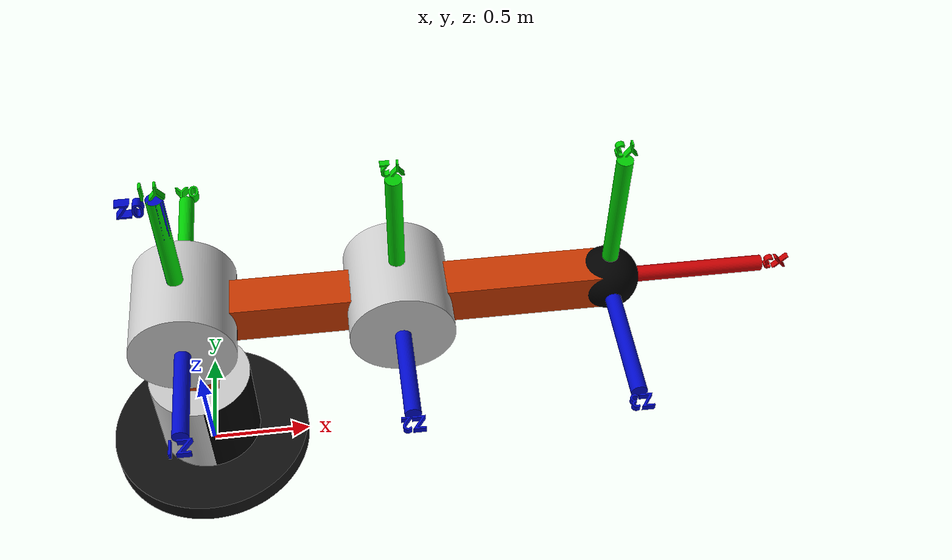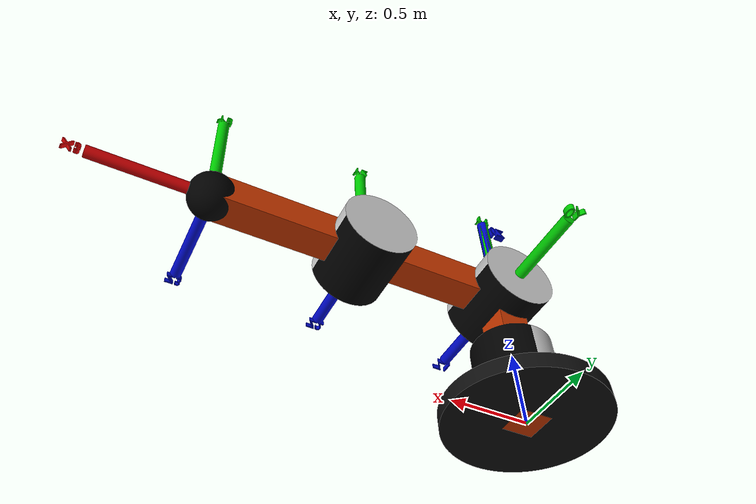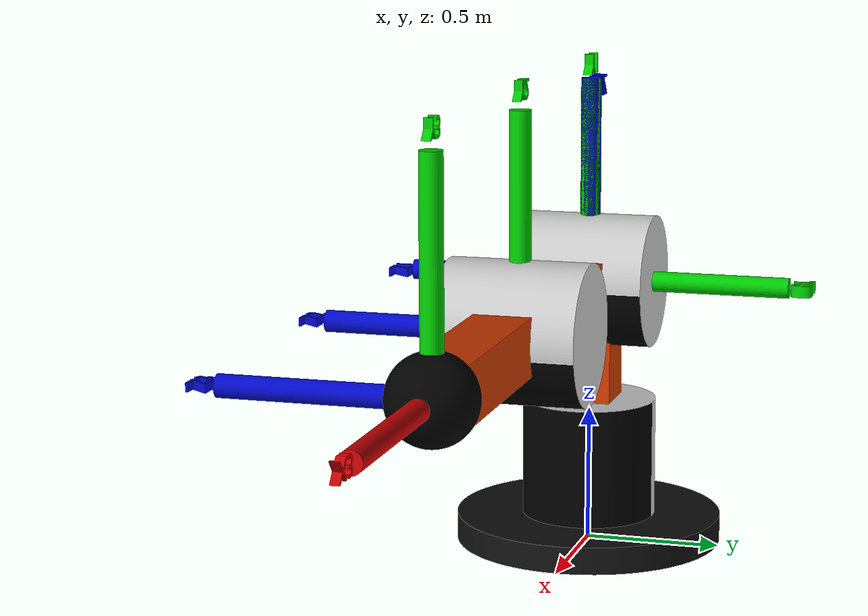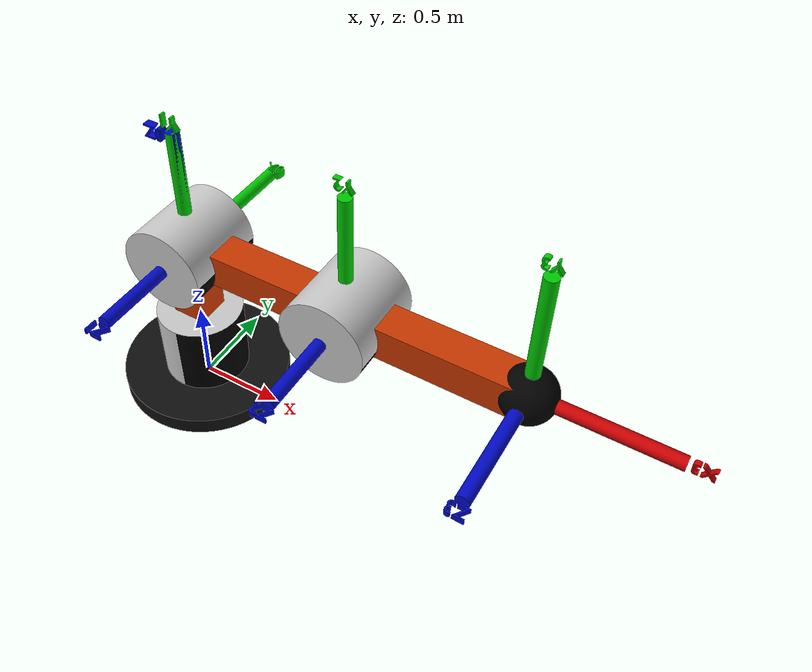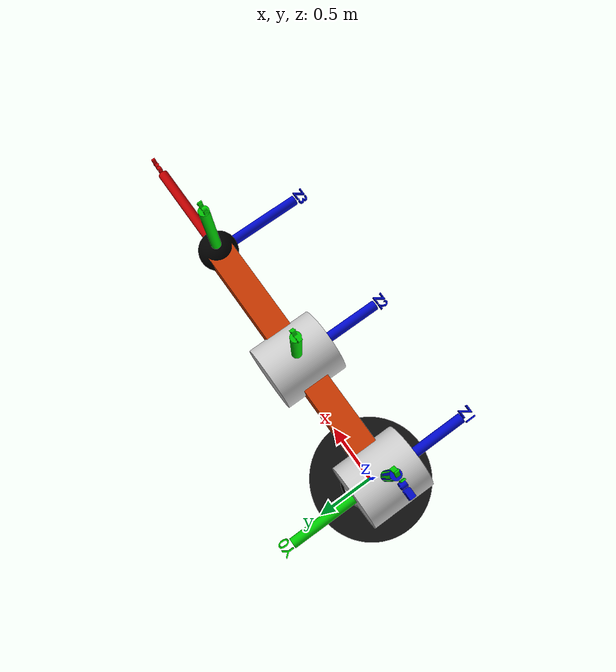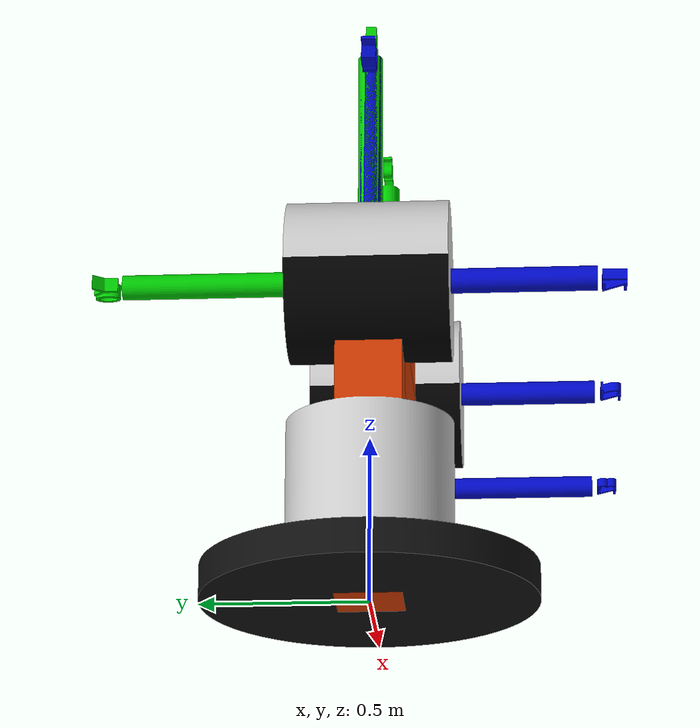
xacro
<?xml version="1.0"?>
<!-- Revolute-Revolute Manipulator -->
<robot name="antropomorphic_arm" xmlns:xacro="http://www.ros.org/wiki/xacro">

  <!-- Constants for robot dimensions -->
  <xacro:property name="PI" value="3.1415926535897931"/>
  <xacro:property name="mass" value="1.0" />
  <xacro:property name="mass_axis" value="0.01" />

  <xacro:property name="r1" value="0" />
  <xacro:property name="r2" value="1.0" />
  <xacro:property name="r3" value="1.0" />
  <xacro:property name="alpha_1" value="${PI/2}" />
  <xacro:property name="alpha_2" value="0" />
  <xacro:property name="alpha_3" value="0" />

  <xacro:property name="scale_dim" value="1.0" />
  <xacro:property name="base_z_displacement" value="0.0" />

  <xacro:property name="link_base_bb_x" value="1.0" />
  <xacro:property name="link_base_bb_y" value="1.0" />
  <xacro:property name="link_base_bb_z" value="0.1" />

  <xacro:property name="link_1_bb_x" value="0.5" />
  <xacro:property name="link_1_bb_y" value="0.5" />
  <xacro:property name="link_1_bb_z" value="1.0" />

  <xacro:property name="link_2_bb_x" value="1.24412" />
  <xacro:property name="link_2_bb_y" value="0.488246" />
  <xacro:property name="link_2_bb_z" value="0.488246" />

  <xacro:property name="link_3_bb_x" value="1.39221" />
  <xacro:property name="link_3_bb_y" value="0.488246" />
  <xacro:property name="link_3_bb_z" value="0.488246" />

  <xacro:property name="joint_lim_effort" value="1000.0" />
  <xacro:property name="joint_lim_vel" value="3.0" />

  <xacro:property name="joint_2_lim_low" value="${-PI/4}" />
  <xacro:property name="joint_2_lim_high" value="${5*PI/4}" />

  <xacro:property name="joint_3_lim_low" value="${-3*PI/4}" />
  <xacro:property name="joint_3_lim_high" value="${3*PI/4}" />

  <xacro:property name="axis_bb" value="0.788" />
  <xacro:property name="frame0_z_displacement" value="1.000" />
  <xacro:property name="scale_axis_dim" value="1.0" />

  <xacro:property name="d_i" value="0.31123" />
  <xacro:property name="theta_i" value="${-PI/4}" />
  <xacro:property name="r_i" value="0.825129" />
  <xacro:property name="alpha_i" value="${-PI/2}" />

  <xacro:macro name="box_inertia" params="mass x y z">
    <inertia  ixx="${mass*(y*y+z*z)/12.0}" ixy = "0" ixz = "0"
              iyy="${mass*(x*x+z*z)/12.0}" iyz = "0"
              izz="${mass*(x*x+y*y)/12.0}"
    />
  </xacro:macro>

  <xacro:macro  name="cylinder_inertia" params="mass r l">
      <inertia  ixx="${mass*(3*r*r+l*l)/12}" ixy = "0" ixz = "0"
                iyy="${mass*(3*r*r+l*l)/12}" iyz = "0"
                izz="${mass*(r*r)/2}" />
  </xacro:macro >

  <xacro:include filename="$(find antropomorphic_arm_description)/robot/antropomorphic_arm.gazebo" />

  <link name="world"/>

  <!-- Extra visual frames-->
  <link name="frame_0">

    <visual>
      <origin xyz="0 0 0" rpy="0 0 0"/>
          <geometry>
                <mesh filename="package://antropomorphic_arm_description/meshes/axis_frame_0.dae" scale="${scale_axis_dim} ${scale_axis_dim} ${scale_axis_dim}"/>
          </geometry>
    </visual>

    <inertial>
      <origin xyz="0 0 0" rpy="0 0 0"/>
      <mass value="${mass_axis}"/>
      <xacro:box_inertia mass="${mass_axis}" x="${axis_bb}" y="${axis_bb}" z="${axis_bb}"/>
    </inertial>
  </link>

  <joint name="fixed_frame_0" type="fixed">
    <origin xyz="0 0 ${frame0_z_displacement}" rpy="0 0 0"/>
    <parent link="world"/>
    <child link="frame_0"/>
  </joint>

  <link name="link_base">
    <collision>
      <origin xyz="0 0 0" rpy="0 0 0"/>
          <geometry>
                <mesh filename="package://antropomorphic_arm_description/meshes/antropomorfic_arm_link_base.dae" scale="${scale_dim} ${scale_dim} ${scale_dim}"/>
          </geometry>
    </collision>

    <visual>
      <origin xyz="0 0 0" rpy="0 0 0"/>
          <geometry>
                <mesh filename="package://antropomorphic_arm_description/meshes/antropomorfic_arm_link_base.dae" scale="${scale_dim} ${scale_dim} ${scale_dim}"/>
          </geometry>
    </visual>

    <inertial>
      <origin xyz="0 0 0" rpy="0 0 0"/>
      <mass value="${mass}"/>
      <xacro:box_inertia mass="${mass}" x="${link_base_bb_x}" y="${link_base_bb_y}" z="${link_base_bb_z}"/>
    </inertial>
  </link>

  <joint name="fixed_world_to_base_joint" type="fixed">
    <origin xyz="0 0 0" rpy="0 0 0"/>
    <parent link="world"/>
    <child link="link_base"/>
  </joint>

  <link name="link_1">
    <collision>
      <origin xyz="0 0 0" rpy="0 0 0"/>
          <geometry>
                <mesh filename="package://antropomorphic_arm_description/meshes/antropomorfic_arm_link_1.dae" scale="${scale_dim} ${scale_dim} ${scale_dim}"/>
          </geometry>
    </collision>

    <visual>
      <origin xyz="0 0 0" rpy="0 0 0"/>
          <geometry>
                <mesh filename="package://antropomorphic_arm_description/meshes/antropomorfic_arm_link_1.dae" scale="${scale_dim} ${scale_dim} ${scale_dim}"/>
          </geometry>
    </visual>

    <inertial>
      <origin xyz="0 0 ${link_1_bb_z/2}" rpy="0 0 0"/>
      <mass value="${mass}"/>
      <xacro:box_inertia mass="${mass}" x="${link_1_bb_x}" y="${link_1_bb_y}" z="${link_1_bb_z}"/>
    </inertial>
  </link>

  <joint name="joint1" type="continuous">
    <parent link="link_base"/>
    <child link="link_1"/>
    <origin xyz="0 0 ${base_z_displacement}" rpy="0 0 0"/>
    <axis xyz="0 0 1"/>
  </joint>

  <!-- Extra visual frames-->
  <link name="frame_1">
    <visual>
      <origin xyz="0 0 0" rpy="0 0 0"/>
          <geometry>
                <mesh filename="package://antropomorphic_arm_description/meshes/axis_frame_1.dae" scale="${scale_axis_dim} ${scale_axis_dim} ${scale_axis_dim}"/>
          </geometry>
    </visual>

    <inertial>
      <origin xyz="0 0 0" rpy="0 0 0"/>
      <mass value="${mass_axis}"/>
      <xacro:box_inertia mass="${mass_axis}" x="${axis_bb}" y="${axis_bb}" z="${axis_bb}"/>
    </inertial>
  </link>

  <joint name="fixed_frame_1" type="fixed">
    <origin xyz="${r1} 0 ${frame0_z_displacement}" rpy="${alpha_1} 0 0"/>
    <parent link="link_1"/>
    <child link="frame_1"/>
  </joint>

  <transmission name="tran1">
    <type>transmission_interface/SimpleTransmission</type>
    <joint name="joint1">
      <hardwareInterface>EffortJointInterface</hardwareInterface>
    </joint>
    <actuator name="motor1">
      <hardwareInterface>EffortJointInterface</hardwareInterface>
      <mechanicalReduction>1</mechanicalReduction>
    </actuator>
  </transmission>

  <!-- LINK 2-->
  <link name="link_2">
    <collision>
      <origin xyz="0 0 0" rpy="0 0 0"/>
          <geometry>
                <mesh filename="package://antropomorphic_arm_description/meshes/antropomorfic_arm_link_2.dae" scale="${scale_dim} ${scale_dim} ${scale_dim}"/>
          </geometry>
    </collision>

    <visual>
      <origin xyz="0 0 0" rpy="0 0 0"/>
          <geometry>
                <mesh filename="package://antropomorphic_arm_description/meshes/antropomorfic_arm_link_2.dae" scale="${scale_dim} ${scale_dim} ${scale_dim}"/>
          </geometry>
    </visual>

    <inertial>
      <origin xyz="${link_2_bb_x/2 - 0.243241} 0 0" rpy="0 0 0"/>
      <mass value="${mass}"/>
      <xacro:box_inertia mass="${mass}" x="${link_2_bb_x}" y="${link_2_bb_y}" z="${link_2_bb_z}"/>
    </inertial>
  </link>

  <joint name="joint2" type="revolute">
    <parent link="frame_1"/>
    <child link="link_2"/>
    <origin xyz="0 0 0" rpy="0 0 0"/>
    <axis xyz="0 0 1"/>
    <limit lower="${joint_2_lim_low}" upper="${joint_2_lim_high}" effort="${joint_lim_effort}" velocity="${joint_lim_vel}"/>
  </joint>

  <link name="frame_2">

    <visual>
      <origin xyz="0 0 0" rpy="0 0 0"/>
          <geometry>
                <mesh filename="package://antropomorphic_arm_description/meshes/axis_frame_2.dae" scale="${scale_axis_dim} ${scale_axis_dim} ${scale_axis_dim}"/>
          </geometry>
    </visual>

    <inertial>
      <origin xyz="0 0 0" rpy="0 0 0"/>
      <mass value="${mass_axis}"/>
      <xacro:box_inertia mass="${mass_axis}" x="${axis_bb}" y="${axis_bb}" z="${axis_bb}"/>
    </inertial>
  </link>

  <joint name="fixed_frame_2" type="fixed">
    <origin xyz="${r2} 0 0" rpy="${alpha_2} 0 0"/>
    <parent link="link_2"/>
    <child link="frame_2"/>
  </joint>

  <transmission name="tran2">
    <type>transmission_interface/SimpleTransmission</type>
    <joint name="joint2">
      <hardwareInterface>EffortJointInterface</hardwareInterface>
    </joint>
    <actuator name="motor2">
      <hardwareInterface>EffortJointInterface</hardwareInterface>
      <mechanicalReduction>1</mechanicalReduction>
    </actuator>
  </transmission>

  <!-- LINK 3 -->

  <link name="link_3">
    <collision>
      <origin xyz="0 0 0" rpy="0 0 0"/>
          <geometry>
                <mesh filename="package://antropomorphic_arm_description/meshes/antropomorfic_arm_link_3.dae" scale="${scale_dim} ${scale_dim} ${scale_dim}"/>
          </geometry>
    </collision>

    <visual>
      <origin xyz="0 0 0" rpy="0 0 0"/>
          <geometry>
                <mesh filename="package://antropomorphic_arm_description/meshes/antropomorfic_arm_link_3.dae" scale="${scale_dim} ${scale_dim} ${scale_dim}"/>
          </geometry>
    </visual>

    <inertial>
      <origin xyz="${link_3_bb_x/2 - 0.243241} 0 0" rpy="0 0 0"/>
      <mass value="${mass}"/>
      <xacro:box_inertia mass="${mass}" x="${link_3_bb_x}" y="${link_2_bb_y}" z="${link_3_bb_z}"/>
    </inertial>
  </link>

  <joint name="joint3" type="revolute">
    <parent link="frame_2"/>
    <child link="link_3"/>
    <origin xyz="0 0 0" rpy="0 0 0"/>
    <axis xyz="0 0 1"/>
    <limit lower="${joint_3_lim_low}" upper="${joint_3_lim_high}" effort="${joint_lim_effort}" velocity="${joint_lim_vel}"/>
  </joint>

  <link name="frame_3">
    <visual>
      <origin xyz="0 0 0" rpy="0 0 0"/>
          <geometry>
                <mesh filename="package://antropomorphic_arm_description/meshes/axis_frame_3.dae" scale="${scale_axis_dim} ${scale_axis_dim} ${scale_axis_dim}"/>
          </geometry>
    </visual>

    <inertial>
      <origin xyz="0 0 0" rpy="0 0 0"/>
      <mass value="${mass_axis}"/>
      <xacro:box_inertia mass="${mass_axis}" x="${axis_bb}" y="${axis_bb}" z="${axis_bb}"/>
    </inertial>
  </link>

  <joint name="fixed_frame_3" type="fixed">
    <origin xyz="${r3} 0 0" rpy="${alpha_3} 0 0"/>
    <parent link="link_3"/>
    <child link="frame_3"/>
  </joint>

  <transmission name="tran3">
    <type>transmission_interface/SimpleTransmission</type>
    <joint name="joint3">
      <hardwareInterface>EffortJointInterface</hardwareInterface>
    </joint>
    <actuator name="motor3">
      <hardwareInterface>EffortJointInterface</hardwareInterface>
      <mechanicalReduction>1</mechanicalReduction>
    </actuator>
  </transmission>

</robot>
